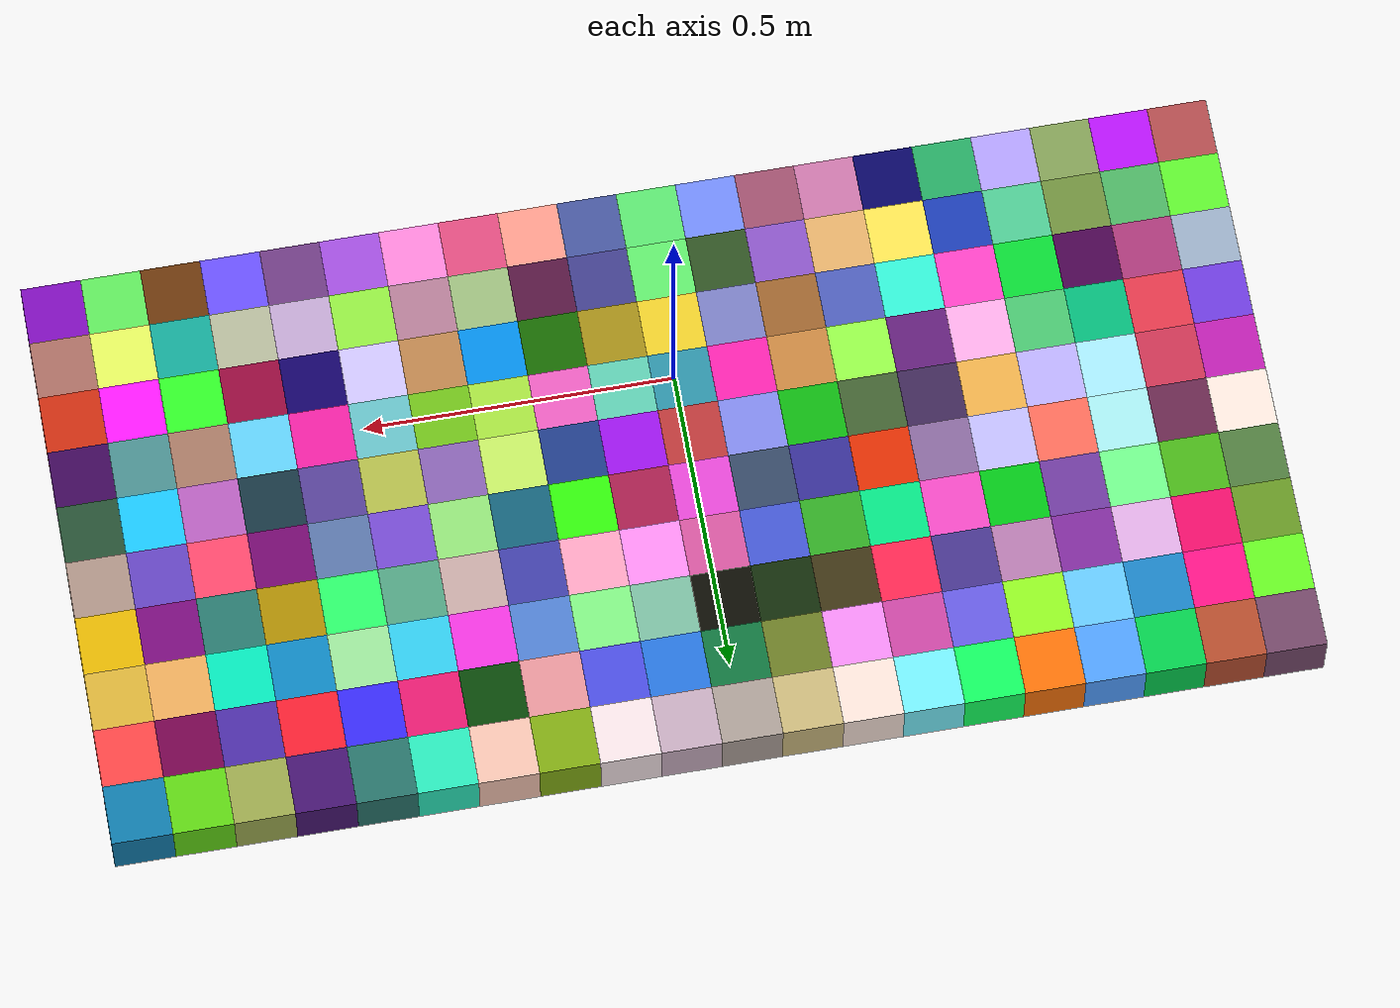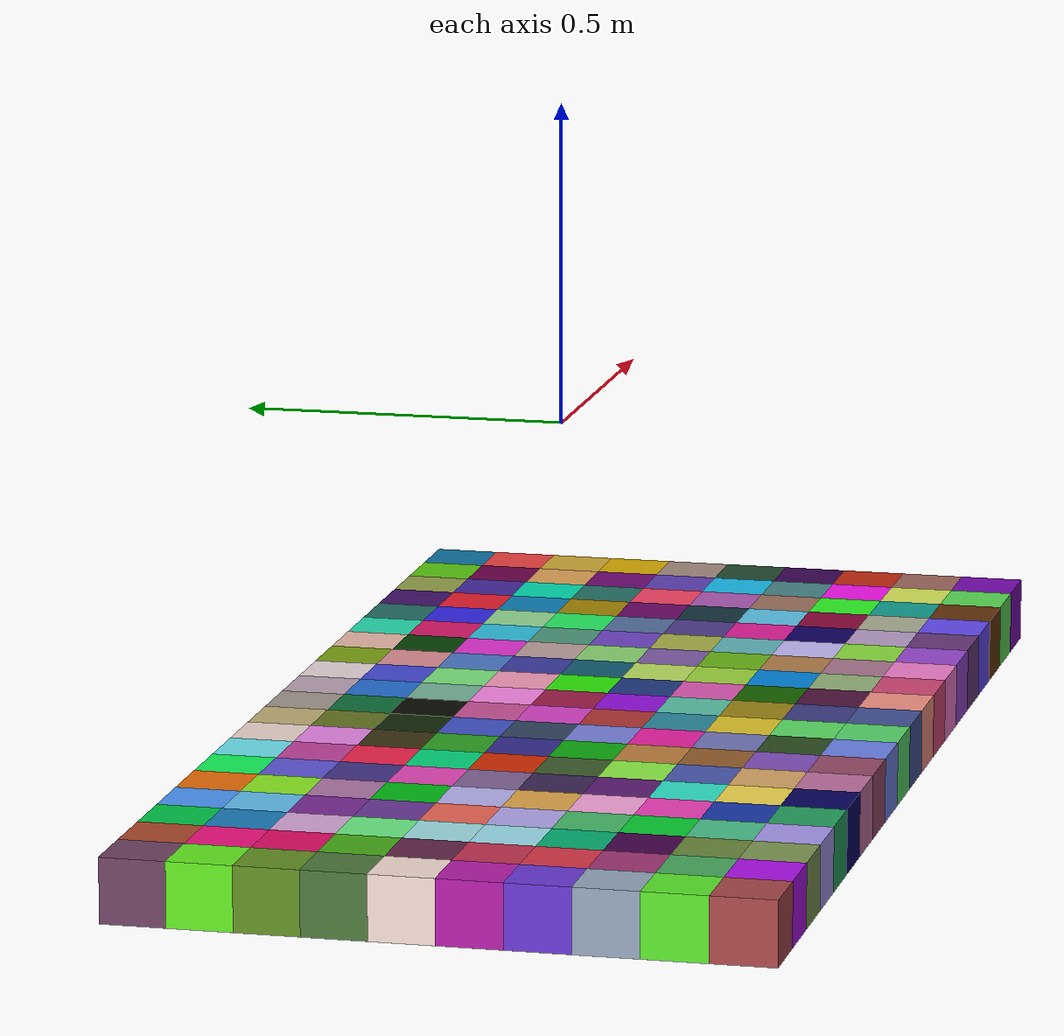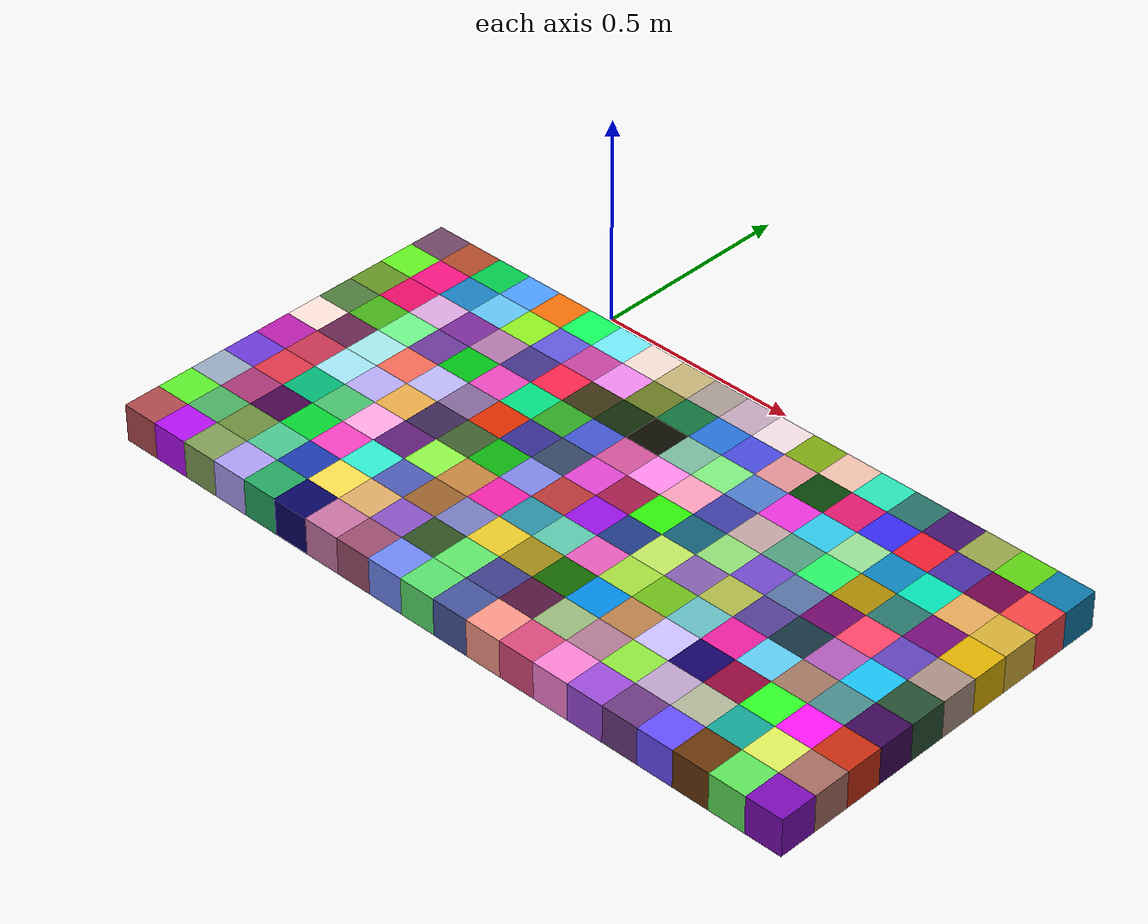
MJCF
<mujoco>
    <default>
        <geom density="100" friction=".5" rgba="1 .6 .8 1" />
    </default>
    <worldbody>
        <geom type="box" size=".05 .05 .05" pos="-0.95 -0.5 -.5" rgba="0.6721734927062673 0.285233075228699 0.2948747283854687 1" />
<geom type="box" size=".05 .05 .05" pos="-0.85 -0.5 -.5" rgba="0.6972947032340133 0.06364609900930696 0.9344526113475552 1" />
<geom type="box" size=".05 .05 .05" pos="-0.75 -0.5 -.5" rgba="0.49977332578840605 0.6064309328237234 0.33024783260395163 1" />
<geom type="box" size=".05 .05 .05" pos="-0.6499999999999999 -0.5 -.5" rgba="0.6749717710452021 0.608535647912937 0.9531488973829568 1" />
<geom type="box" size=".05 .05 .05" pos="-0.5499999999999999 -0.5 -.5" rgba="0.13990892357991125 0.6461879458210916 0.3773943705845605 1" />
<geom type="box" size=".05 .05 .05" pos="-0.44999999999999996 -0.5 -.5" rgba="0.030225764690741785 0.01495806944650857 0.38608309243538785 1" />
<geom type="box" size=".05 .05 .05" pos="-0.34999999999999987 -0.5 -.5" rgba="0.7737068173720978 0.4500669169371223 0.6449047052297869 1" />
<geom type="box" size=".05 .05 .05" pos="-0.2499999999999999 -0.5 -.5" rgba="0.604226914262834 0.3005483458504278 0.41740527025993424 1" />
<geom type="box" size=".05 .05 .05" pos="-0.1499999999999999 -0.5 -.5" rgba="0.4333134077958102 0.5290839264825749 0.941939706092224 1" />
<geom type="box" size=".05 .05 .05" pos="-0.04999999999999993 -0.5 -.5" rgba="0.34510840135831555 0.8661675621591208 0.4243780653604774 1" />
<geom type="box" size=".05 .05 .05" pos="0.050000000000000044 -0.5 -.5" rgba="0.2658785231907421 0.3295647237627186 0.6040847911750228 1" />
<geom type="box" size=".05 .05 .05" pos="0.15000000000000013 -0.5 -.5" rgba="0.9761936747003622 0.5874623701446074 0.5263992327842281 1" />
<geom type="box" size=".05 .05 .05" pos="0.2500000000000002 -0.5 -.5" rgba="0.8492771806986106 0.2829542977534897 0.48220549799992996 1" />
<geom type="box" size=".05 .05 .05" pos="0.3500000000000001 -0.5 -.5" rgba="0.9721570845797468 0.5061840817413414 0.8257387999391286 1" />
<geom type="box" size=".05 .05 .05" pos="0.4500000000000002 -0.5 -.5" rgba="0.6103249369488389 0.29433068763545533 0.8415283960834365 1" />
<geom type="box" size=".05 .05 .05" pos="0.55 -0.5 -.5" rgba="0.41857389367613396 0.22519754016436633 0.4963514637537645 1" />
<geom type="box" size=".05 .05 .05" pos="0.6500000000000001 -0.5 -.5" rgba="0.3975989854715303 0.3025183995993337 0.9803015352804929 1" />
<geom type="box" size=".05 .05 .05" pos="0.7500000000000002 -0.5 -.5" rgba="0.40673025526022966 0.2055244402316162 0.04098931900771552 1" />
<geom type="box" size=".05 .05 .05" pos="0.8500000000000001 -0.5 -.5" rgba="0.35862523319958584 0.8817255824312291 0.34512913226355657 1" />
<geom type="box" size=".05 .05 .05" pos="0.9500000000000002 -0.5 -.5" rgba="0.4787743940118896 0.04576900099486292 0.7096498263607337 1" />
<geom type="box" size=".05 .05 .05" pos="-0.95 -0.4 -.5" rgba="0.35865341728770905 0.9219285936169765 0.1714347852525263 1" />
<geom type="box" size=".05 .05 .05" pos="-0.85 -0.4 -.5" rgba="0.2895764963309334 0.6820012462025601 0.3783650997113637 1" />
<geom type="box" size=".05 .05 .05" pos="-0.75 -0.4 -.5" rgba="0.4237328897239243 0.5435678701089981 0.2329820581490607 1" />
<geom type="box" size=".05 .05 .05" pos="-0.6499999999999999 -0.4 -.5" rgba="0.2963212505717985 0.7691480967346972 0.5578536737511038 1" />
<geom type="box" size=".05 .05 .05" pos="-0.5499999999999999 -0.4 -.5" rgba="0.10264472237297495 0.22709031845372651 0.6864871335404262 1" />
<geom type="box" size=".05 .05 .05" pos="-0.44999999999999996 -0.4 -.5" rgba="0.9756743553008695 0.8675764042443382 0.3092102491510125 1" />
<geom type="box" size=".05 .05 .05" pos="-0.34999999999999987 -0.4 -.5" rgba="0.8668754671001331 0.6669906458110395 0.4002658460892229 1" />
<geom type="box" size=".05 .05 .05" pos="-0.2499999999999999 -0.4 -.5" rgba="0.5221951323707881 0.320851654004663 0.7551291919478158 1" />
<geom type="box" size=".05 .05 .05" pos="-0.1499999999999999 -0.4 -.5" rgba="0.17815665103570688 0.30979558230049553 0.13025536899639378 1" />
<geom type="box" size=".05 .05 .05" pos="-0.04999999999999993 -0.4 -.5" rgba="0.3674629068134493 0.8922694692644058 0.4098852765798977 1" />
<geom type="box" size=".05 .05 .05" pos="0.050000000000000044 -0.4 -.5" rgba="0.24410521991335665 0.23938459996608874 0.5346964790470748 1" />
<geom type="box" size=".05 .05 .05" pos="0.15000000000000013 -0.4 -.5" rgba="0.32238377151253483 0.08235831781063785 0.244837023650623 1" />
<geom type="box" size=".05 .05 .05" pos="0.2500000000000002 -0.4 -.5" rgba="0.5920434832253374 0.7167102740031364 0.47776476218913544 1" />
<geom type="box" size=".05 .05 .05" pos="0.3500000000000001 -0.4 -.5" rgba="0.6838021026959725 0.47436772127469895 0.5738236519608577 1" />
<geom type="box" size=".05 .05 .05" pos="0.4500000000000002 -0.4 -.5" rgba="0.5584837441334545 0.8951792954867249 0.2440887327564164 1" />
<geom type="box" size=".05 .05 .05" pos="0.55 -0.4 -.5" rgba="0.7339141514947031 0.6322274754962268 0.7921874124682227 1" />
<geom type="box" size=".05 .05 .05" pos="0.6500000000000001 -0.4 -.5" rgba="0.6850362609260383 0.7031652137453224 0.5888749274375097 1" />
<geom type="box" size=".05 .05 .05" pos="0.7500000000000002 -0.4 -.5" rgba="0.07009889367066868 0.6392760981598027 0.5814115296946756 1" />
<geom type="box" size=".05 .05 .05" pos="0.8500000000000001 -0.4 -.5" rgba="0.8681824824229841 0.932371774041627 0.3593018789132947 1" />
<geom type="box" size=".05 .05 .05" pos="0.9500000000000002 -0.4 -.5" rgba="0.6456460570712649 0.4169227325336866 0.3751317618870922 1" />
<geom type="box" size=".05 .05 .05" pos="-0.95 -0.3 -.5" rgba="0.584261375163242 0.6582032068134592 0.7485953010454629 1" />
<geom type="box" size=".05 .05 .05" pos="-0.85 -0.3 -.5" rgba="0.646922453381822 0.2106961191083916 0.4586721719415817 1" />
<geom type="box" size=".05 .05 .05" pos="-0.75 -0.3 -.5" rgba="0.27526207769812827 0.010188155195556492 0.2989510438620335 1" />
<geom type="box" size=".05 .05 .05" pos="-0.6499999999999999 -0.3 -.5" rgba="0.027624603106962242 0.8232068126261942 0.19584513662522274 1" />
<geom type="box" size=".05 .05 .05" pos="-0.5499999999999999 -0.3 -.5" rgba="0.9562012980271509 0.24601076157585977 0.7469650892233985 1" />
<geom type="box" size=".05 .05 .05" pos="-0.44999999999999996 -0.3 -.5" rgba="0.1885781177544189 0.9185725648196873 0.8111440978740749 1" />
<geom type="box" size=".05 .05 .05" pos="-0.34999999999999987 -0.3 -.5" rgba="0.29525763786198156 0.35658118525568294 0.7056176383805627 1" />
<geom type="box" size=".05 .05 .05" pos="-0.2499999999999999 -0.3 -.5" rgba="0.5977088276856144 0.3813399536920946 0.17514034122155342 1" />
<geom type="box" size=".05 .05 .05" pos="-0.1499999999999999 -0.3 -.5" rgba="0.4611470548216341 0.48147277527307275 0.7428632231347747 1" />
<geom type="box" size=".05 .05 .05" pos="-0.04999999999999993 -0.3 -.5" rgba="0.9012278136689884 0.7856480767006656 0.16445797406297435 1" />
<geom type="box" size=".05 .05 .05" pos="0.050000000000000044 -0.3 -.5" rgba="0.6238162487401827 0.5363936389693013 0.08848998624128024 1" />
<geom type="box" size=".05 .05 .05" pos="0.15000000000000013 -0.3 -.5" rgba="0.08619680724283607 0.398399698942558 0.0013168581990995465 1" />
<geom type="box" size=".05 .05 .05" pos="0.2500000000000002 -0.3 -.5" rgba="0.008455971426334363 0.53499045769872 0.8861492244957427 1" />
<geom type="box" size=".05 .05 .05" pos="0.3500000000000001 -0.3 -.5" rgba="0.7158909935887506 0.5011468114203523 0.2939300316314174 1" />
<geom type="box" size=".05 .05 .05" pos="0.4500000000000002 -0.3 -.5" rgba="0.7858858485478084 0.7467925409382439 0.9936793611111747 1" />
<geom type="box" size=".05 .05 .05" pos="0.55 -0.3 -.5" rgba="0.07309928848586222 0.0007363514316093278 0.39697744459389916 1" />
<geom type="box" size=".05 .05 .05" pos="0.6500000000000001 -0.3 -.5" rgba="0.5662541630240153 0.03334408509680853 0.2281501689670491 1" />
<geom type="box" size=".05 .05 .05" pos="0.7500000000000002 -0.3 -.5" rgba="0.17900657117423835 0.9974504029610912 0.1467868882043889 1" />
<geom type="box" size=".05 .05 .05" pos="0.8500000000000001 -0.3 -.5" rgba="0.9864782353179711 0.08353626256451319 0.9506537351492323 1" />
<geom type="box" size=".05 .05 .05" pos="0.9500000000000002 -0.3 -.5" rgba="0.7766167609433823 0.17290705764016479 0.06314674359712213 1" />
<geom type="box" size=".05 .05 .05" pos="-0.95 -0.19999999999999996 -.5" rgba="0.4150239807380508 0.22261013471601365 0.8407415545710041 1" />
<geom type="box" size=".05 .05 .05" pos="-0.85 -0.19999999999999996 -.5" rgba="0.8602158984709208 0.21260809303855943 0.2832510581503863 1" />
<geom type="box" size=".05 .05 .05" pos="-0.75 -0.19999999999999996 -.5" rgba="0.012355800151428231 0.7010546552543656 0.46437520184654413 1" />
<geom type="box" size=".05 .05 .05" pos="-0.6499999999999999 -0.19999999999999996 -.5" rgba="0.27615808062538927 0.74522522564132 0.422071104978341 1" />
<geom type="box" size=".05 .05 .05" pos="-0.5499999999999999 -0.19999999999999996 -.5" rgba="0.9870744727570053 0.6537529713987374 0.8783811292510403 1" />
<geom type="box" size=".05 .05 .05" pos="-0.44999999999999996 -0.19999999999999996 -.5" rgba="0.37267016762938143 0.11508895063935887 0.4632526296991297 1" />
<geom type="box" size=".05 .05 .05" pos="-0.34999999999999987 -0.19999999999999996 -.5" rgba="0.565289443309944 0.9612671439722343 0.27178463733348535 1" />
<geom type="box" size=".05 .05 .05" pos="-0.2499999999999999 -0.19999999999999996 -.5" rgba="0.7621077690636082 0.5112906652969552 0.2453566142754262 1" />
<geom type="box" size=".05 .05 .05" pos="-0.1499999999999999 -0.19999999999999996 -.5" rgba="0.9400725528061354 0.12970433538255732 0.6612945044211582 1" />
<geom type="box" size=".05 .05 .05" pos="-0.04999999999999993 -0.19999999999999996 -.5" rgba="0.17178263660554527 0.5524743033527144 0.6384832263425356 1" />
<geom type="box" size=".05 .05 .05" pos="0.050000000000000044 -0.19999999999999996 -.5" rgba="0.358135508556339 0.7768149819491511 0.6708074237658677 1" />
<geom type="box" size=".05 .05 .05" pos="0.15000000000000013 -0.19999999999999996 -.5" rgba="0.886987527401483 0.3538568325992184 0.7230230683582578 1" />
<geom type="box" size=".05 .05 .05" pos="0.2500000000000002 -0.19999999999999996 -.5" rgba="0.6340218657189446 0.8556226614277215 0.24239142177106854 1" />
<geom type="box" size=".05 .05 .05" pos="0.3500000000000001 -0.19999999999999996 -.5" rgba="0.4267738584002372 0.7284377616966181 0.09367877463576701 1" />
<geom type="box" size=".05 .05 .05" pos="0.4500000000000002 -0.19999999999999996 -.5" rgba="0.38777257096932893 0.7299576498276745 0.7520887548692784 1" />
<geom type="box" size=".05 .05 .05" pos="0.55 -0.19999999999999996 -.5" rgba="0.9048596926882688 0.11905848401924779 0.6195873060313996 1" />
<geom type="box" size=".05 .05 .05" pos="0.6500000000000001 -0.19999999999999996 -.5" rgba="0.36776479052128874 0.7891702986057806 0.9354763370756327 1" />
<geom type="box" size=".05 .05 .05" pos="0.7500000000000002 -0.19999999999999996 -.5" rgba="0.6314129795728766 0.45850340975426307 0.38098311481771563 1" />
<geom type="box" size=".05 .05 .05" pos="0.8500000000000001 -0.19999999999999996 -.5" rgba="0.28268202000684306 0.5394612205715671 0.5440473616263609 1" />
<geom type="box" size=".05 .05 .05" pos="0.9500000000000002 -0.19999999999999996 -.5" rgba="0.23314333015258382 0.02458555847460464 0.3386899930700973 1" />
<geom type="box" size=".05 .05 .05" pos="-0.95 -0.09999999999999998 -.5" rgba="0.7191872920706246 0.1130831881200759 0.6705216933561412 1" />
<geom type="box" size=".05 .05 .05" pos="-0.85 -0.09999999999999998 -.5" rgba="0.7695803154471528 0.19983093924304973 0.3165665383292313 1" />
<geom type="box" size=".05 .05 .05" pos="-0.75 -0.09999999999999998 -.5" rgba="0.6305542282119023 0.8935143064295145 0.9498054688870652 1" />
<geom type="box" size=".05 .05 .05" pos="-0.6499999999999999 -0.09999999999999998 -.5" rgba="0.7124545608088824 0.6664261149418087 0.9522985279815644 1" />
<geom type="box" size=".05 .05 .05" pos="-0.5499999999999999 -0.09999999999999998 -.5" rgba="0.9000257291506976 0.6663664631889019 0.28562615498442645 1" />
<geom type="box" size=".05 .05 .05" pos="-0.44999999999999996 -0.09999999999999998 -.5" rgba="0.23694388005549372 0.15047865498047408 0.3344850535782512 1" />
<geom type="box" size=".05 .05 .05" pos="-0.34999999999999987 -0.09999999999999998 -.5" rgba="0.24580249714625957 0.3682336931955812 0.18347338973650884 1" />
<geom type="box" size=".05 .05 .05" pos="-0.2499999999999999 -0.09999999999999998 -.5" rgba="0.05614120578290427 0.6874318262199015 0.06520610770543112 1" />
<geom type="box" size=".05 .05 .05" pos="-0.1499999999999999 -0.09999999999999998 -.5" rgba="0.4898019210061947 0.52034851840209 0.8946530941833423 1" />
<geom type="box" size=".05 .05 .05" pos="-0.04999999999999993 -0.09999999999999998 -.5" rgba="0.7115346133084928 0.21041466512449591 0.21562662712475977 1" />
<geom type="box" size=".05 .05 .05" pos="0.050000000000000044 -0.09999999999999998 -.5" rgba="0.5889820724546726 0.06750296766648622 0.8882190111171853 1" />
<geom type="box" size=".05 .05 .05" pos="0.15000000000000013 -0.09999999999999998 -.5" rgba="0.12184720896243262 0.23051933852411566 0.517729688504769 1" />
<geom type="box" size=".05 .05 .05" pos="0.2500000000000002 -0.09999999999999998 -.5" rgba="0.7512963503337244 0.8970857553921359 0.381188729025407 1" />
<geom type="box" size=".05 .05 .05" pos="0.3500000000000001 -0.09999999999999998 -.5" rgba="0.5141498676591232 0.3701563103291291 0.6742908489772773 1" />
<geom type="box" size=".05 .05 .05" pos="0.4500000000000002 -0.09999999999999998 -.5" rgba="0.6755539190703568 0.7099200848901329 0.2790517263182585 1" />
<geom type="box" size=".05 .05 .05" pos="0.55 -0.09999999999999998 -.5" rgba="0.3238635116590306 0.23972080776512683 0.5726425261879554 1" />
<geom type="box" size=".05 .05 .05" pos="0.6500000000000001 -0.09999999999999998 -.5" rgba="0.08603891878584546 0.20180562635944344 0.2508077044349083 1" />
<geom type="box" size=".05 .05 .05" pos="0.7500000000000002 -0.09999999999999998 -.5" rgba="0.6915968395782219 0.3572255197941203 0.7214962859420825 1" />
<geom type="box" size=".05 .05 .05" pos="0.8500000000000001 -0.09999999999999998 -.5" rgba="0.09950158443553048 0.753830409723958 0.949513815994689 1" />
<geom type="box" size=".05 .05 .05" pos="0.9500000000000002 -0.09999999999999998 -.5" rgba="0.14268404774745236 0.30154534960693524 0.1934022263549401 1" />
<geom type="box" size=".05 .05 .05" pos="-0.95 0.0 -.5" rgba="0.9794867617775918 0.8808165061395583 0.8411035036554165 1" />
<geom type="box" size=".05 .05 .05" pos="-0.85 0.0 -.5" rgba="0.395339648645775 0.14409426757656763 0.2957585315488128 1" />
<geom type="box" size=".05 .05 .05" pos="-0.75 0.0 -.5" rgba="0.6353171139971474 0.9002421274326426 0.912909119623788 1" />
<geom type="box" size=".05 .05 .05" pos="-0.6499999999999999 0.0 -.5" rgba="0.9468631455951548 0.40810632305989647 0.3374562752568433 1" />
<geom type="box" size=".05 .05 .05" pos="-0.5499999999999999 0.0 -.5" rgba="0.7331632764875136 0.7142382015801231 0.9622998114711218 1" />
<geom type="box" size=".05 .05 .05" pos="-0.44999999999999996 0.0 -.5" rgba="0.5189362013351824 0.3987217044162419 0.6012790367150118 1" />
<geom type="box" size=".05 .05 .05" pos="-0.34999999999999987 0.0 -.5" rgba="0.8499414087484836 0.1771166643467278 0.010974360576568198 1" />
<geom type="box" size=".05 .05 .05" pos="-0.2499999999999999 0.0 -.5" rgba="0.20858326467298582 0.17665971876429332 0.5678345877354001 1" />
<geom type="box" size=".05 .05 .05" pos="-0.1499999999999999 0.0 -.5" rgba="0.196656821613451 0.27134634457348106 0.3868383988470093 1" />
<geom type="box" size=".05 .05 .05" pos="-0.04999999999999993 0.0 -.5" rgba="0.8690130293800332 0.2668326482310668 0.8059617821350126 1" />
<geom type="box" size=".05 .05 .05" pos="0.050000000000000044 0.0 -.5" rgba="0.6343365814224557 0.11134657731511921 0.2951408396270335 1" />
<geom type="box" size=".05 .05 .05" pos="0.15000000000000013 0.0 -.5" rgba="0.18356166069158364 0.9353951873412165 0.03819648854751945 1" />
<geom type="box" size=".05 .05 .05" pos="0.2500000000000002 0.0 -.5" rgba="0.07539879299447261 0.37040532278103067 0.4642292325616265 1" />
<geom type="box" size=".05 .05 .05" pos="0.3500000000000001 0.0 -.5" rgba="0.5561700272152837 0.8566694240450827 0.4542121480796403 1" />
<geom type="box" size=".05 .05 .05" pos="0.4500000000000002 0.0 -.5" rgba="0.44127207937305446 0.277141153478657 0.7901121759470624 1" />
<geom type="box" size=".05 .05 .05" pos="0.55 0.0 -.5" rgba="0.33953428217531856 0.4472029379073763 0.6397196290289296 1" />
<geom type="box" size=".05 .05 .05" pos="0.6500000000000001 0.0 -.5" rgba="0.43783622142182343 0.027999934981712493 0.4190404143822003 1" />
<geom type="box" size=".05 .05 .05" pos="0.7500000000000002 0.0 -.5" rgba="0.9874189448949238 0.26670231126051414 0.4071757786040955 1" />
<geom type="box" size=".05 .05 .05" pos="0.8500000000000001 0.0 -.5" rgba="0.37654909257537583 0.2555229984160844 0.7265025689323227 1" />
<geom type="box" size=".05 .05 .05" pos="0.9500000000000002 0.0 -.5" rgba="0.6559360612443661 0.5545160604646155 0.5053345062872544 1" />
<geom type="box" size=".05 .05 .05" pos="-0.95 0.10000000000000009 -.5" rgba="0.3027469070384693 0.472440880345499 0.23751469917559387 1" />
<geom type="box" size=".05 .05 .05" pos="-0.85 0.10000000000000009 -.5" rgba="0.2756236891791145 0.6868517899274363 0.09173703333546035 1" />
<geom type="box" size=".05 .05 .05" pos="-0.75 0.10000000000000009 -.5" rgba="0.4268432641116042 0.9499931491322541 0.5303331587900277 1" />
<geom type="box" size=".05 .05 .05" pos="-0.6499999999999999 0.10000000000000009 -.5" rgba="0.4194961745764757 0.2204896110590009 0.6039637022246208 1" />
<geom type="box" size=".05 .05 .05" pos="-0.5499999999999999 0.10000000000000009 -.5" rgba="0.0052129002569197835 0.7486450445412312 0.08666678413474338 1" />
<geom type="box" size=".05 .05 .05" pos="-0.44999999999999996 0.10000000000000009 -.5" rgba="0.9153230225172063 0.2778232799939334 0.7394645852308229 1" />
<geom type="box" size=".05 .05 .05" pos="-0.34999999999999987 0.10000000000000009 -.5" rgba="0.012700813231465546 0.8627251323141217 0.502415656301261 1" />
<geom type="box" size=".05 .05 .05" pos="-0.2499999999999999 0.10000000000000009 -.5" rgba="0.1844727895768552 0.6443369665510982 0.13608348118896418 1" />
<geom type="box" size=".05 .05 .05" pos="-0.1499999999999999 0.10000000000000009 -.5" rgba="0.25583545162386123 0.32883577145083054 0.7972586244418398 1" />
<geom type="box" size=".05 .05 .05" pos="-0.04999999999999993 0.10000000000000009 -.5" rgba="0.8064248906464095 0.32467695790310724 0.6008559132217749 1" />
<geom type="box" size=".05 .05 .05" pos="0.050000000000000044 0.10000000000000009 -.5" rgba="0.9981406855500126 0.5349004991400101 0.9168416128019854 1" />
<geom type="box" size=".05 .05 .05" pos="0.15000000000000013 0.10000000000000009 -.5" rgba="0.9733588398748206 0.6187849428686198 0.7323197701260146 1" />
<geom type="box" size=".05 .05 .05" pos="0.2500000000000002 0.10000000000000009 -.5" rgba="0.24291878552660717 0.2360006913239392 0.6364082200658662 1" />
<geom type="box" size=".05 .05 .05" pos="0.3500000000000001 0.10000000000000009 -.5" rgba="0.7549559721298592 0.640035318024278 0.6296943582401454 1" />
<geom type="box" size=".05 .05 .05" pos="0.4500000000000002 0.10000000000000009 -.5" rgba="0.308503304616887 0.6147419827091086 0.4952930324890873 1" />
<geom type="box" size=".05 .05 .05" pos="0.55 0.10000000000000009 -.5" rgba="0.15846176483269447 0.9521733248285226 0.39986863556305174 1" />
<geom type="box" size=".05 .05 .05" pos="0.6500000000000001 0.10000000000000009 -.5" rgba="0.6574701383786864 0.5332210600125634 0.012997925425338397 1" />
<geom type="box" size=".05 .05 .05" pos="0.7500000000000002 0.10000000000000009 -.5" rgba="0.15064906262530964 0.45578833586811085 0.41336162734880033 1" />
<geom type="box" size=".05 .05 .05" pos="0.8500000000000001 0.10000000000000009 -.5" rgba="0.4578046901063463 0.04222027951459617 0.4716403657894006 1" />
<geom type="box" size=".05 .05 .05" pos="0.9500000000000002 0.10000000000000009 -.5" rgba="0.8655296288949713 0.6868808260260455 0.008862806449920102 1" />
<geom type="box" size=".05 .05 .05" pos="-0.95 0.20000000000000007 -.5" rgba="0.3892538450931561 0.5703899566474103 0.13930588711089664 1" />
<geom type="box" size=".05 .05 .05" pos="-0.85 0.20000000000000007 -.5" rgba="0.9054082796397777 0.047031705097147825 0.40349688311514686 1" />
<geom type="box" size=".05 .05 .05" pos="-0.75 0.20000000000000007 -.5" rgba="0.851468035702381 0.6577189883350341 0.8667798281148219 1" />
<geom type="box" size=".05 .05 .05" pos="-0.6499999999999999 0.20000000000000007 -.5" rgba="0.48309469736147326 0.16471974510057463 0.5969699348166737 1" />
<geom type="box" size=".05 .05 .05" pos="-0.5499999999999999 0.20000000000000007 -.5" rgba="0.6942374473667525 0.4668349823148481 0.6677322702872505 1" />
<geom type="box" size=".05 .05 .05" pos="-0.44999999999999996 0.20000000000000007 -.5" rgba="0.2666424322550295 0.19882544182758055 0.5354620151838275 1" />
<geom type="box" size=".05 .05 .05" pos="-0.34999999999999987 0.20000000000000007 -.5" rgba="0.9640364798132348 0.14120249911859972 0.3048784210370056 1" />
<geom type="box" size=".05 .05 .05" pos="-0.2499999999999999 0.20000000000000007 -.5" rgba="0.2324804452403959 0.19846226002358536 0.07727467765163065 1" />
<geom type="box" size=".05 .05 .05" pos="-0.1499999999999999 0.20000000000000007 -.5" rgba="0.06797520753794017 0.16855846189915724 0.03567319413854386 1" />
<geom type="box" size=".05 .05 .05" pos="-0.04999999999999993 0.20000000000000007 -.5" rgba="0.04281322831823775 0.04317489754084036 0.010658558011174657 1" />
<geom type="box" size=".05 .05 .05" pos="0.050000000000000044 0.20000000000000007 -.5" rgba="0.46677158891009307 0.7161661675344448 0.6107801525426279 1" />
<geom type="box" size=".05 .05 .05" pos="0.15000000000000013 0.20000000000000007 -.5" rgba="0.48941818330740183 0.9191874069672423 0.49644660187484957 1" />
<geom type="box" size=".05 .05 .05" pos="0.2500000000000002 0.20000000000000007 -.5" rgba="0.3011584894033438 0.4827332096759507 0.7953256404223105 1" />
<geom type="box" size=".05 .05 .05" pos="0.3500000000000001 0.20000000000000007 -.5" rgba="0.9107723110136533 0.19997698150730203 0.8467626371942688 1" />
<geom type="box" size=".05 .05 .05" pos="0.4500000000000002 0.20000000000000007 -.5" rgba="0.18388923379722932 0.7728009351049682 0.8958942523392194 1" />
<geom type="box" size=".05 .05 .05" pos="0.55 0.20000000000000007 -.5" rgba="0.587299283215467 0.8654105162943083 0.5835695655373568 1" />
<geom type="box" size=".05 .05 .05" pos="0.6500000000000001 0.20000000000000007 -.5" rgba="0.050089676669182404 0.5094330175388362 0.730765091747446 1" />
<geom type="box" size=".05 .05 .05" pos="0.7500000000000002 0.20000000000000007 -.5" rgba="0.0118068637850256 0.8766643876552542 0.7051817148242178 1" />
<geom type="box" size=".05 .05 .05" pos="0.8500000000000001 0.20000000000000007 -.5" rgba="0.8933707196736044 0.6520683324972799 0.34462653109870167 1" />
<geom type="box" size=".05 .05 .05" pos="0.9500000000000002 0.20000000000000007 -.5" rgba="0.8280675299754383 0.6743256294691476 0.21656209086305134 1" />
<geom type="box" size=".05 .05 .05" pos="-0.95 0.30000000000000004 -.5" rgba="0.39097826816709635 0.937551082764584 0.13017916441238409 1" />
<geom type="box" size=".05 .05 .05" pos="-0.85 0.30000000000000004 -.5" rgba="0.9578775995306574 0.06901764942434974 0.5090796354696907 1" />
<geom type="box" size=".05 .05 .05" pos="-0.75 0.30000000000000004 -.5" rgba="0.10274221179900267 0.49698369229618433 0.7489442931403654 1" />
<geom type="box" size=".05 .05 .05" pos="-0.6499999999999999 0.30000000000000004 -.5" rgba="0.3843238423904032 0.7608491180486305 0.9522406142503042 1" />
<geom type="box" size=".05 .05 .05" pos="-0.5499999999999999 0.30000000000000004 -.5" rgba="0.5567332805228454 0.9380807681441945 0.13082020972980968 1" />
<geom type="box" size=".05 .05 .05" pos="-0.44999999999999996 0.30000000000000004 -.5" rgba="0.38399504488244673 0.3422951925926768 0.8595161562795854 1" />
<geom type="box" size=".05 .05 .05" pos="-0.34999999999999987 0.30000000000000004 -.5" rgba="0.769084764205885 0.26367878640414066 0.6216599441583088 1" />
<geom type="box" size=".05 .05 .05" pos="-0.2499999999999999 0.30000000000000004 -.5" rgba="0.9248217440682681 0.5314302546797361 0.921466747373231 1" />
<geom type="box" size=".05 .05 .05" pos="-0.1499999999999999 0.30000000000000004 -.5" rgba="0.40752829455624606 0.47048163245441976 0.1401984368496083 1" />
<geom type="box" size=".05 .05 .05" pos="-0.04999999999999993 0.30000000000000004 -.5" rgba="0.05981672585926723 0.4406322189891754 0.23187260741802496 1" />
<geom type="box" size=".05 .05 .05" pos="0.050000000000000044 0.30000000000000004 -.5" rgba="0.1481917718498561 0.4416573183757855 0.8422664550746907 1" />
<geom type="box" size=".05 .05 .05" pos="0.15000000000000013 0.30000000000000004 -.5" rgba="0.28036085176572656 0.28880910169219853 0.8551238659351069 1" />
<geom type="box" size=".05 .05 .05" pos="0.2500000000000002 0.30000000000000004 -.5" rgba="0.8726870148664139 0.5636205493492709 0.5828748076231811 1" />
<geom type="box" size=".05 .05 .05" pos="0.3500000000000001 0.30000000000000004 -.5" rgba="0.02748557155294551 0.26707524916591074 0.02931678238911073 1" />
<geom type="box" size=".05 .05 .05" pos="0.4500000000000002 0.30000000000000004 -.5" rgba="0.8714334162499429 0.09399603754460584 0.42540392337315347 1" />
<geom type="box" size=".05 .05 .05" pos="0.55 0.30000000000000004 -.5" rgba="0.20543615106378754 0.1552303398671968 0.9259766692426395 1" />
<geom type="box" size=".05 .05 .05" pos="0.6500000000000001 0.30000000000000004 -.5" rgba="0.9263838712326894 0.11623117406317385 0.1870141405867306 1" />
<geom type="box" size=".05 .05 .05" pos="0.7500000000000002 0.30000000000000004 -.5" rgba="0.28357491710192007 0.16827188491484624 0.6265374096588513 1" />
<geom type="box" size=".05 .05 .05" pos="0.8500000000000001 0.30000000000000004 -.5" rgba="0.4395700220380888 0.007077820784536115 0.28788724783113395 1" />
<geom type="box" size=".05 .05 .05" pos="0.9500000000000002 0.30000000000000004 -.5" rgba="0.9460928768198748 0.2611796146660019 0.26421384156729566 1" />
<geom type="box" size=".05 .05 .05" pos="-0.95 0.4 -.5" rgba="0.43738397013306995 0.26786275563806905 0.3955248110892674 1" />
<geom type="box" size=".05 .05 .05" pos="-0.85 0.4 -.5" rgba="0.6862492104475654 0.28940951916158497 0.16789576210217494 1" />
<geom type="box" size=".05 .05 .05" pos="-0.75 0.4 -.5" rgba="0.007335972372640609 0.7860672052848034 0.2911585240041328 1" />
<geom type="box" size=".05 .05 .05" pos="-0.6499999999999999 0.4 -.5" rgba="0.3032722565813716 0.6062582421492174 0.9876432325998681 1" />
<geom type="box" size=".05 .05 .05" pos="-0.5499999999999999 0.4 -.5" rgba="0.9440696891261185 0.43159774091809444 0.02985284906883412 1" />
<geom type="box" size=".05 .05 .05" pos="-0.44999999999999996 0.4 -.5" rgba="0.06399321805264846 0.9894651311888524 0.3617187003065052 1" />
<geom type="box" size=".05 .05 .05" pos="-0.34999999999999987 0.4 -.5" rgba="0.4399300233126675 0.9105973768884857 0.9598225157804924 1" />
<geom type="box" size=".05 .05 .05" pos="-0.2499999999999999 0.4 -.5" rgba="0.9470811242758884 0.8638558436732954 0.8241678817325674 1" />
<geom type="box" size=".05 .05 .05" pos="-0.1499999999999999 0.4 -.5" rgba="0.7652423296620027 0.6955644630605679 0.4695606082582595 1" />
<geom type="box" size=".05 .05 .05" pos="-0.04999999999999993 0.4 -.5" rgba="0.6489886586830813 0.6008603765440541 0.5713255394952925 1" />
<geom type="box" size=".05 .05 .05" pos="0.050000000000000044 0.4 -.5" rgba="0.7512662953937125 0.6499175349010863 0.7249120419547856 1" />
<geom type="box" size=".05 .05 .05" pos="0.15000000000000013 0.4 -.5" rgba="0.9323120193826203 0.8633210741959109 0.8745768055288426 1" />
<geom type="box" size=".05 .05 .05" pos="0.2500000000000002 0.4 -.5" rgba="0.48947192695655883 0.6475759849758781 0.06978642731968332 1" />
<geom type="box" size=".05 .05 .05" pos="0.3500000000000001 0.4 -.5" rgba="0.9274131769088699 0.7412520772560585 0.6729484274081325 1" />
<geom type="box" size=".05 .05 .05" pos="0.4500000000000002 0.4 -.5" rgba="0.15291197593143313 0.8803337223968606 0.7079100736532458 1" />
<geom type="box" size=".05 .05 .05" pos="0.55 0.4 -.5" rgba="0.14672021475957098 0.4325635312141676 0.3990996300842732 1" />
<geom type="box" size=".05 .05 .05" pos="0.6500000000000001 0.4 -.5" rgba="0.25921742625796995 0.07432646545620991 0.4233705438531282 1" />
<geom type="box" size=".05 .05 .05" pos="0.7500000000000002 0.4 -.5" rgba="0.5871049767183055 0.6372517029505675 0.29385767174151156 1" />
<geom type="box" size=".05 .05 .05" pos="0.8500000000000001 0.4 -.5" rgba="0.358165509633229 0.8052163725146274 0.06813491383945813 1" />
<geom type="box" size=".05 .05 .05" pos="0.9500000000000002 0.4 -.5" rgba="0.05272141213185422 0.4655314530849639 0.6510182052771735 1" />

    </worldbody>
</mujoco>
